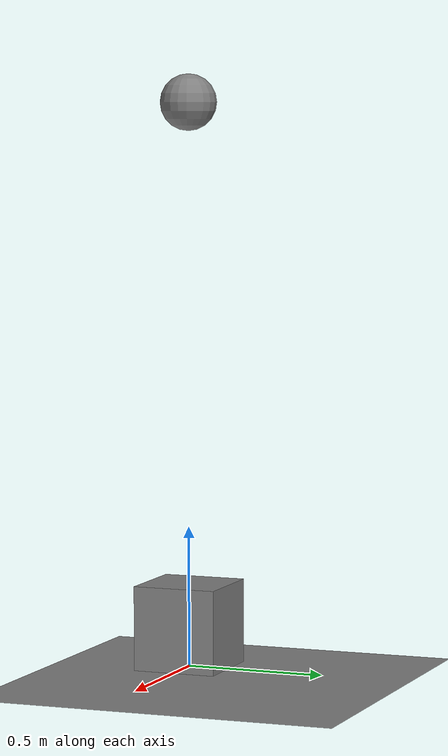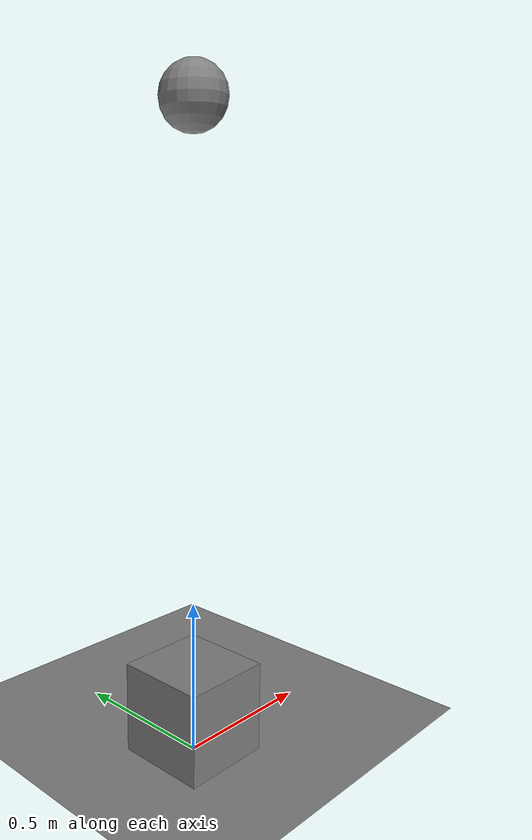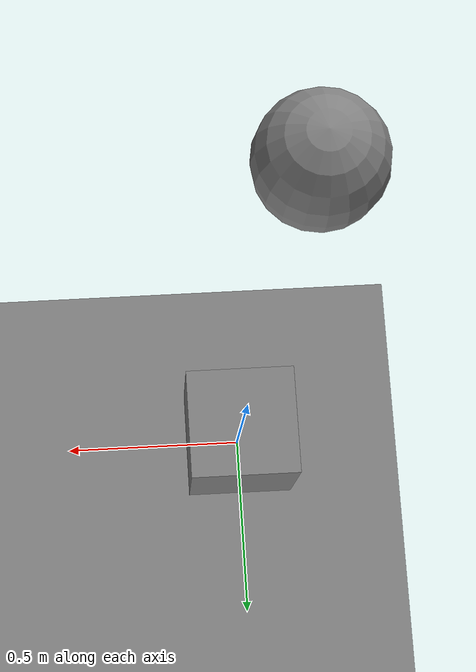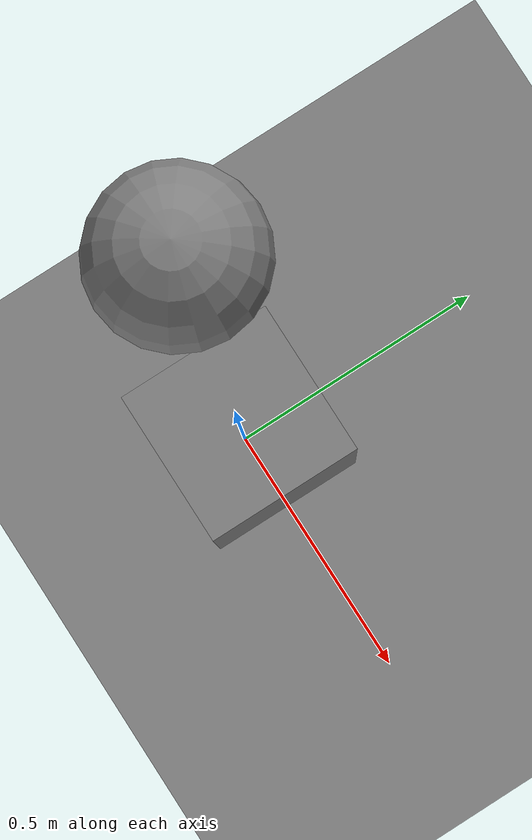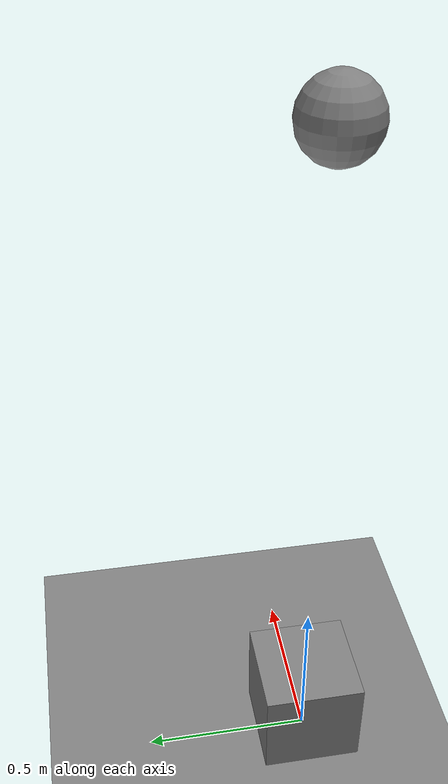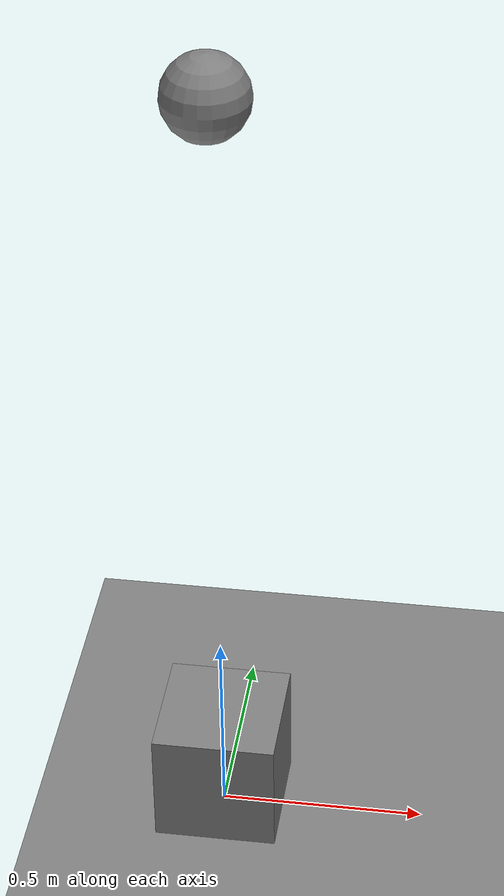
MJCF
<mujoco model="wake-on-contact">
  <option gravity="0 0 -9.81" timestep="0.002" sleep_tolerance="0.05">
    <flag sleep="enable"/>
  </option>
  <worldbody>
    <geom name="floor" type="plane" size="5 5 0.1" solref="0.005 1.5"/>
    <body name="box" pos="0 0 0.15" sleep="init">
      <freejoint/>
      <geom name="box_geom" type="box" size="0.15 0.15 0.15" mass="2" solref="0.005 1.5"/>
    </body>
    <body name="ball" pos="0 0 2.0">
      <freejoint/>
      <geom name="ball_geom" type="sphere" size="0.1" mass="0.5" solref="0.005 1.5"/>
    </body>
  </worldbody>
</mujoco>
